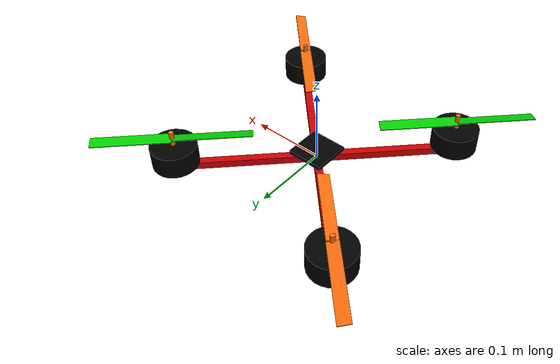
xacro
<?xml version="1.0"?>
<!-- Revolute-Revolute Manipulator -->
<robot name="rrbot" xmlns:xacro="http://www.ros.org/wiki/xacro">

    <!-- Constants for robot dimensions -->
    <xacro:property name="namespace" value="/rrbot"/>
    <xacro:property name="PI" value="3.1415926535897931"/>

    <!-- ros_control plugin -->

    <gazebo>
        <plugin name="gazebo_ros_control" filename="libgazebo_ros_control.so">
            <robotNamespace>${namespace}</robotNamespace>
            <robotSimType>gazebo_ros_control/DefaultRobotHWSim</robotSimType>
        </plugin>
        <plugin name="rrbot_groundtruth" filename="libgazebo_ros_p3d.so">
            <robotNamespace>${namespace}</robotNamespace>
            <frameName>world</frameName>
            <alwaysOn>true</alwaysOn>
            <bodyName>FC</bodyName>
            <topicName>position_groundtruth</topicName>
            <gaussianNoise>0.00</gaussianNoise>
            <updateRate>100.0</updateRate>
        </plugin>
        <plugin name="quadrotor_imu_gt" filename="libhector_gazebo_ros_imu.so">
            <robotNamespace>${namespace}</robotNamespace>
            <updateRate>100.0</updateRate>
            <frameId>world</frameId>
            <bodyName>FC</bodyName>
            <topicName>imu_groundtruth</topicName>
            <rpyOffset>0 0 0</rpyOffset> <!-- deprecated -->
            <gaussianNoise>0</gaussianNoise>  <!-- deprecated -->
            <accelDrift>0 0 0</accelDrift>
            <accelGaussianNoise>0 0 0</accelGaussianNoise>
            <rateDrift>0 0 0</rateDrift>
            <rateGaussianNoise>0 0 0</rateGaussianNoise>
        </plugin>
        <plugin name="quadrotor_imu_sim" filename="libhector_gazebo_ros_imu.so">
            <robotNamespace>${namespace}</robotNamespace>
            <updateRate>100.0</updateRate>
            <frameId>world</frameId>
            <bodyName>FC</bodyName>
            <topicName>sim_imu</topicName>
            <rpyOffset>0 0 0</rpyOffset> <!-- deprecated -->
            <gaussianNoise>0</gaussianNoise>  <!-- deprecated -->
            <accelDrift>0.05 0.05 0.05</accelDrift>
            <accelGaussianNoise>0.35 0.35 0.3</accelGaussianNoise>
            <rateDrift>0.1 0.1 0.1</rateDrift>
            <rateGaussianNoise>0.05 0.05 0.015</rateGaussianNoise>
        </plugin>
        <plugin name="quadrotor_baro_sim" filename="libhector_gazebo_ros_baro.so">
            <robotNamespace>${namespace}</robotNamespace>
            <updateRate>10.0</updateRate>
            <frameId>world</frameId>
            <topicName>sim_barometer</topicName>
            <offset>0</offset>
            <drift>10.0</drift>
            <gaussianNoise>0.1</gaussianNoise>
        </plugin>

        <plugin name="quadrotor_magnetic_sim" filename="libhector_gazebo_ros_magnetic.so">
            <robotNamespace>${namespace}</robotNamespace>
            <updateRate>10.0</updateRate>
            <bodyName>FC</bodyName>
            <frameId>world</frameId>
            <topicName>sim_magnetometer</topicName>
            <offset>0 0 0</offset>
            <drift>0.0 0.0 0.0</drift>
            <gaussianNoise>1.3e-2 1.3e-2 1.3e-2</gaussianNoise>
        </plugin>
        <plugin name="quadrotor_gps_sim" filename="libhector_gazebo_ros_gps.so">
            <robotNamespace>${namespace}</robotNamespace>
            <updateRate>5.0</updateRate>
            <bodyName>FC</bodyName>
            <frameId>world</frameId>
            <topicName>sim_gps_fix</topicName>
            <velocityTopicName>sim_gps_vel</velocityTopicName>
            <referenceLatitude>48.75</referenceLatitude>
            <referenceLongitude>9.105</referenceLongitude>
            <drift>5.0 5.0 5.0</drift>
            <gaussianNoise>0.01 0.01 0.01</gaussianNoise>
            <velocityDrift>0 0 0</velocityDrift>
            <velocityGaussianNoise>0.05 0.05 0.05</velocityGaussianNoise>
          </plugin>
    </gazebo>

    <xacro:macro name="gazebo_mat_color" params="color">
        <material>Gazebo/${color}</material>
    </xacro:macro>
    <material name="Black">
        <color rgba="0.0 0.0 0.0 1.0"/>
    </material>
    <material name="Blue">
        <color rgba="0.0 0.0 0.8 1.0"/>
    </material>
    <material name="Green">
        <color rgba="0.0 0.8 0.0 1.0"/>
    </material>
    <material name="Grey">
        <color rgba="0.2 0.2 0.2 1.0"/>
    </material>
    <material name="Orange">
        <color rgba="${255/255} ${108/255} ${10/255} 1.0"/>
    </material>
    <material name="Brown">
        <color rgba="${222/255} ${207/255} ${195/255} 1.0"/>
    </material>
    <material name="Red">
        <color rgba="0.8 0.0 0.0 1.0"/>
    </material>
    <material name="White">
        <color rgba="1.0 1.0 1.0 1.0"/>
    </material>

    <!-- A primitive for a box -->
    <xacro:macro name="box_base_link" params="name m x y z mat **gaz_extra">
        <link name="${name}">
            <collision>
                <origin xyz="0 0 0" rpy="0 0 0"/>
                <geometry>
                    <box size="${x} ${y} ${z}"/>
                </geometry>
            </collision>
            <visual>
                <origin xyz="0 0 0" rpy="0 0 0"/>
                <geometry>
                    <box size="${x} ${y} ${z}"/>
                </geometry>
                <material name="${mat}"/>
            </visual>
            <inertial>
                <origin xyz="0 0 0" rpy="0 0 0"/>
                <mass value="${m}"/>
                <inertia
                    ixx="${(m / 12.0) * (y*y + z*z)}" ixy="0.0" ixz="0.0"
                    iyy="${(m / 12.0) * (x*x + z*z)}" iyz="0.0"
                    izz="${(m / 12.0) * (x*x + y*y)}" />
            </inertial>
        </link>
        <gazebo reference="${name}">
            <xacro:gazebo_mat_color color="${mat}" />
            <mu1>0.2</mu1>
            <mu2>0.2</mu2>
        </gazebo>
        <xacro:insert_block name="gaz_extra" />
    </xacro:macro>

    <!-- A primitive for a cylinder -->
    <xacro:macro name="cylinder_base_link" params="name m l r mat">
        <link name="${name}">
            <collision>
                <origin xyz="0 0 0" rpy="0 0 0"/>
                <geometry>
                    <cylinder length="${l}" radius="${r}" />
                </geometry>
            </collision>
            <visual>
                <origin xyz="0 0 0" rpy="0 0 0"/>
                <geometry>
                    <cylinder length="${l}" radius="${r}" />
                </geometry>
                <material name="${mat}"/>
            </visual>
            <inertial>
                <origin xyz="0 0 0" rpy="0 0 0"/>
                <mass value="${m}"/>
                <inertia
                    ixx="${(m / 12.0) * (3*r*r + l*l)}" ixy="0.0" ixz="0.0"
                    iyy="${(m / 12.0) * (3*r*r + l*l)}" iyz="0.0"
                    izz="${(m / 2) * (r*r)}" />
            </inertial>
        </link>
        <gazebo reference="${name}">
            <xacro:gazebo_mat_color color="${mat}" />
            <mu1>0.2</mu1>
            <mu2>0.2</mu2>
        </gazebo>
        <!--xacro:insert_block name="gaz_extra" /-->
    </xacro:macro>

    <!-- A primitive for a box with lift and drag -->
    <xacro:macro name="wing" params="name m x y z mat">
        <xacro:box_base_link name="${name}" m="${m}" x="${x}" y="${y}" z="${z}" mat="${mat}">
            <plugin_extra>
                <gazebo>
                    <plugin name="${name}_lifting_surface" filename="libLiftDragPlugin.so">
                        <a0>0</a0>
                        <alpha_stall>0.3368</alpha_stall>
                        <cla>5.418</cla>
                        <cla_stall>-2.1419</cla_stall>
                        <cda>${ 2.0 / PI }</cda>
                        <cda_stall>${ 2.0 / PI }</cda_stall>
                        <area>${ 10 * x * y }</area> <!-- using 10 times the area to enforce lower prop speeds due to simulator limitations -->
                        <air_density>1.2041</air_density>
                        <forward>0 1 0</forward>
                        <upward>0 0 1</upward>
                        <cp>0 0 0</cp>
                        <link_name>${name}</link_name>
                        <radial_symmetry>false</radial_symmetry>
                    </plugin>
                </gazebo>
            </plugin_extra>
        </xacro:box_base_link>
    </xacro:macro>

    <!-- Right and left turning motors including propellers - templates -->
    <xacro:macro name="motor_with_propeller_left" params="name">
        <xacro:cylinder_base_link name="${name}_link" m="0.05" r="0.03" l="0.03" mat="Black" />
        <joint name="${name}" type="continuous">
            <limit effort="100" velocity="1000" />
            <dynamics damping="0.0001" friction="0.01" />
            <parent link="${name}_link"/>
            <origin xyz="0 0 0.025" rpy="0 0 0"/>
            <axis xyz="0 0 1" />
            <child link="${name}_axle"/>
        </joint>
        <transmission name="${name}_trans">
            <type>transmission_interface/SimpleTransmission</type>
            <joint name="${name}">
                <hardwareInterface>hardware_interface/EffortJointInterface</hardwareInterface>
            </joint>
            <actuator name="${name}">
                <hardwareInterface>hardware_interface/EffortJointInterface</hardwareInterface>
                <mechanicalReduction>1</mechanicalReduction>
            </actuator>
            </transmission>
        <xacro:cylinder_base_link name="${name}_axle" m="0.05" r="0.003" l="0.019" mat="Orange" />
        <joint name="${name}_blade1_joint" type="revolute">
            <!-- this must be a revolute joint due to a simulator bug. it does not actually move -->
            <limit effort="1000" velocity="0" lower="0" upper="0" />
            <parent link="${name}_axle" />
            <origin xyz="0.05 0 0" rpy="${PI/18} 0 0" /><!-- this is the angle of attack of the prop blade: 10 deg-->
            <axis xyz="0 0 1" />
            <child link="${name}_blade1"/>
        </joint>
        <xacro:wing name="${name}_blade1" m="0.005" x="0.1" y="0.015" z="0.001" mat="Orange" />
        <joint name="${name}_blade2_joint" type="revolute">
            <!-- this must be a revolute joint due to a simulator bug. it does not actually move -->
            <limit effort="1000" velocity="0" lower="0" upper="0" />
            <parent link="${name}_axle" />
            <origin xyz="-0.05 0 0" rpy="${PI/18} 0 ${PI}" /><!-- this is the angle of attack of the prop blade: 10 deg-->
            <axis xyz="0 0 1" />
            <child link="${name}_blade2"/>
        </joint>
        <xacro:wing name="${name}_blade2" m="0.005" x="0.1" y="0.015" z="0.001" mat="Orange" />
    </xacro:macro>
    <xacro:macro name="motor_with_propeller_right" params="name">
        <xacro:cylinder_base_link name="${name}_link" m="0.05" r="0.03" l="0.03" mat="Black" />
        <joint name="${name}" type="continuous">
            <limit effort="100" velocity="1000" />
            <dynamics damping="0.0001" friction="0.01" />
            <parent link="${name}_link"/>
            <origin xyz="0 0 0.025" rpy="${PI} 0 0"/><!-- note: rotated 180 deg to force reverse rotation -->
            <axis xyz="0 0 1" />
            <child link="${name}_axle"/>
        </joint>
        <transmission name="${name}_trans">
            <type>transmission_interface/SimpleTransmission</type>
            <joint name="${name}">
                <hardwareInterface>hardware_interface/EffortJointInterface</hardwareInterface>
            </joint>
            <actuator name="${name}">
                <hardwareInterface>hardware_interface/EffortJointInterface</hardwareInterface>
                <mechanicalReduction>1</mechanicalReduction>
            </actuator>
            </transmission>
        <xacro:cylinder_base_link name="${name}_axle" m="0.05" r="0.003" l="0.019" mat="Orange" />
        <joint name="${name}_blade1_joint" type="revolute">
            <!-- this must be a revolute joint due to a simulator bug. it does not actually move -->
            <limit effort="1000" velocity="0" lower="0" upper="0" />
            <parent link="${name}_axle" />
            <origin xyz="0.05 0 0" rpy="${-PI/18} 0 0" /><!-- this is the angle of attack of the prop blade: reverse 10 deg-->
            <axis xyz="0 0 1" />
            <child link="${name}_blade1"/>
        </joint>
        <xacro:wing name="${name}_blade1" m="0.005" x="0.1" y="0.015" z="0.001" mat="Green" />
        <joint name="${name}_blade2_joint" type="revolute">
            <!-- this must be a revolute joint due to a simulator bug. it does not actually move -->
            <limit effort="1000" velocity="0" lower="0" upper="0" />
            <parent link="${name}_axle" />
            <origin xyz="-0.05 0 0" rpy="${-PI/18} 0 ${PI}" /><!-- this is the angle of attack of the prop blade: reverse 10 deg-->
            <axis xyz="0 0 1" />
            <child link="${name}_blade2"/>
        </joint>
        <xacro:wing name="${name}_blade2" m="0.005" x="0.1" y="0.015" z="0.001" mat="Green" />
    </xacro:macro>

<xacro:macro name="ft_sensor_macro" params="name_joint">

<gazebo reference="${name_joint}">
    <provideFeedback>true</provideFeedback>
</gazebo>

<!-- The ft_sensor plugin -->
<gazebo>
    <plugin name="ft_sensor" filename="libgazebo_ros_ft_sensor.so">

        <updateRate>100.0</updateRate>
        <topicName>force_torque</topicName>
        <jointName>${name_joint}</jointName>
    </plugin>
</gazebo>
</xacro:macro>

    <!-- dummy root link used for a vehicle that is not glued to the world map-->
    <link name="dummyroot" />

    <!-- actual vehicle definition is here, using macros -->
    <!-- flight controller - base for the sensors -->
    <!-- 2 red bars 90 degrees to each other -->
    <xacro:box_base_link name="FC" m="0.002" x="0.05" y="0.05" z="0.005" mat="Black">
        <nothing/>
    </xacro:box_base_link>
    <joint name="FC_joint" type="revolute">
        <parent link="dummyroot"/>
        <origin xyz="0 0 0.01" rpy="0 0 0"/>
        <child link="FC"/>
        <limit effort="1000" velocity="10" lower="0" upper="0" />
    </joint>

    <!-- 2 red bars 90 degrees to each other -->
    <joint name="dummyrootjoint" type="revolute">
        <parent link="dummyroot"/>
        <origin xyz="0 0 0" rpy="0 0 ${-PI/4}"/>
        <child link="bar0"/>
        <limit effort="1000" velocity="10" lower="0" upper="0" />
    </joint>
    <xacro:box_base_link name="bar0" m="0.1" x="0.4" y="0.01" z="0.01" mat="Red">
        <nothing/>
    </xacro:box_base_link>
    <joint name="bar_joint" type="fixed">
        <parent link="dummyroot"/>
        <origin xyz="0 0 0" rpy="0 0 ${PI/4}"/>
        <child link="bar1"/>
    </joint>
    <xacro:box_base_link name="bar1" m="0.1" x="0.4" y="0.01" z="0.01" mat="Red">
        <nothing/>
    </xacro:box_base_link>

    <!-- one motor of each type as example - please also check file:
        < rrbot_control/config/rrbot_control.yaml >
        where the motors are referenced for virtual engine controllers -->
    <joint name="bar_motor0_joint" type="fixed">
        <parent link="bar1"/>
        <origin xyz="0.18 0 0.02" rpy="0 0 0"/>
        <child link="motor0_link"/>
    </joint>
    <xacro:motor_with_propeller_right name="motor0" />

    <joint name="bar_motor2_joint" type="fixed">
        <parent link="bar1"/>
        <origin xyz="-0.18 0 0.02" rpy="0 0 0"/>
        <child link="motor2_link"/>
    </joint>
    <xacro:motor_with_propeller_right name="motor2" />

    <joint name="bar_motor1_joint" type="fixed">
        <parent link="bar0"/>
        <origin xyz="0.18 0 0.02" rpy="0 0 0"/>
        <child link="motor1_link"/>
    </joint>
    <xacro:motor_with_propeller_left name="motor1" />

    <joint name="bar_motor3_joint" type="fixed">
        <parent link="bar0"/>
        <origin xyz="-0.18 0 0.02" rpy="0 0 0"/>
        <child link="motor3_link"/>
    </joint>
    <xacro:motor_with_propeller_left name="motor3" />

    <!-- BEGIN force/torque sensor -->

<!-- END force/torque sensor -->

</robot>
